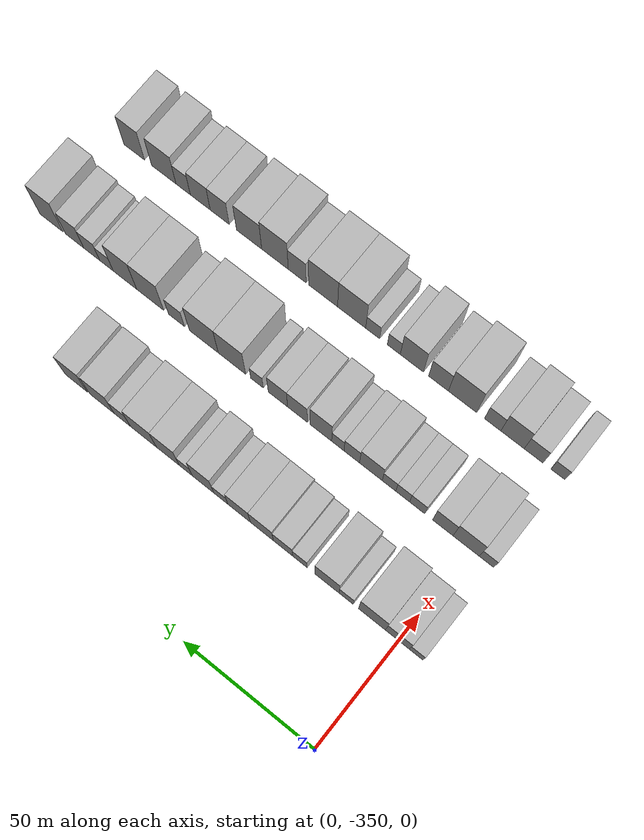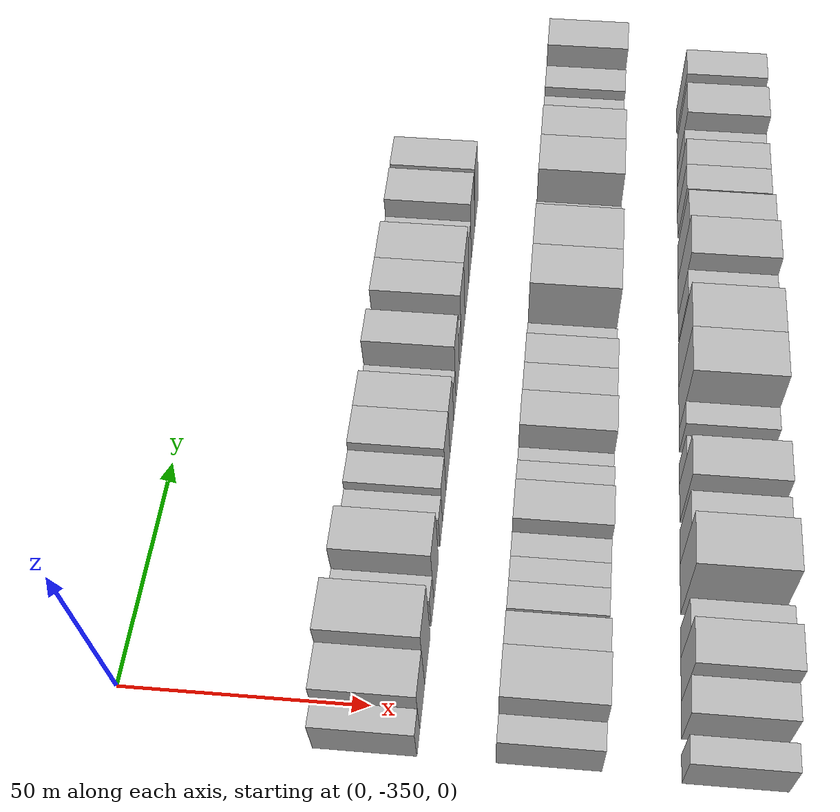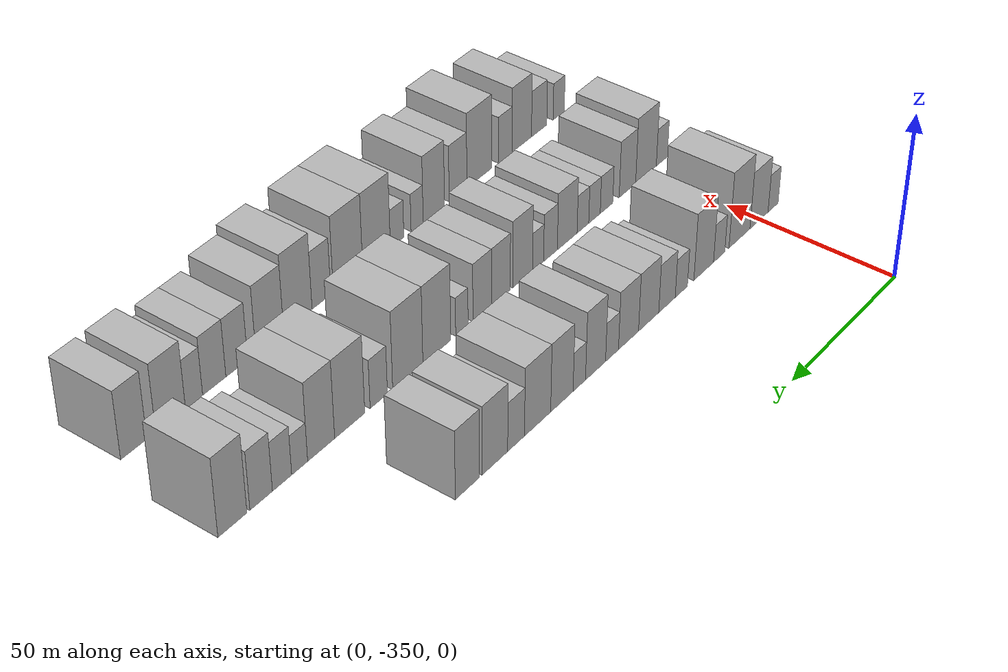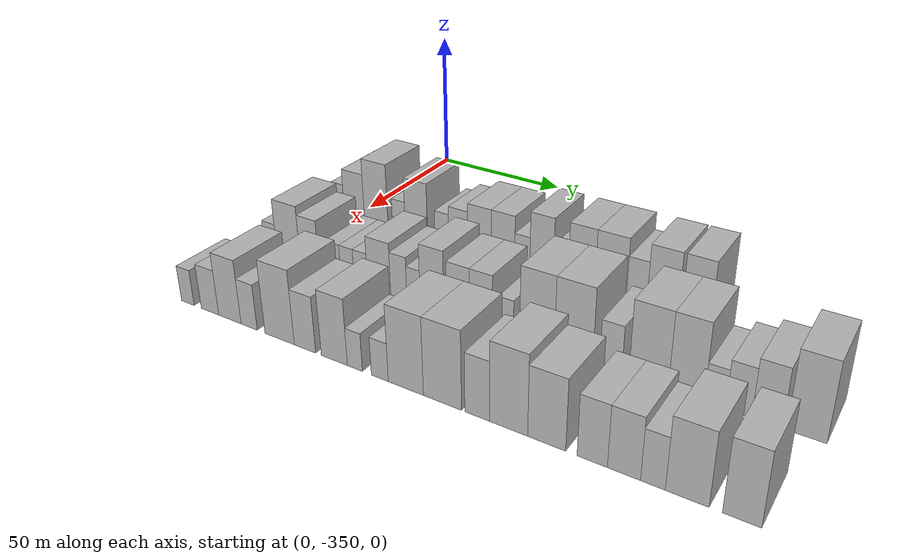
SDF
<sdf version="1.6">
 <world name="default">
  <model name="building_1">
   <static>1</static>
   <pose>50.0000 -356.4722 0 0.000000 0.000000 0.000000</pose>
   <link name="link">
    <pose>0 0 6.00 0 0 0</pose>
    <collision name="collision"><geometry><box><size>20.0000 5.0555 12.0000</size></box></geometry></collision>
    <visual name="visual">
     <cast_shadows>0</cast_shadows>
     <geometry><box><size>20.0000 5.0555 12.0000</size></box></geometry>
     <material>
      <script>
       <uri>model://HANNAS_wall/materials/scripts</uri>
       <uri>model://HANNAS_wall/materials/textures</uri>
       <name>vrc/HANNAS_wall</name>
      </script>
     </material>
    </visual>
   </link>
  </model>
  <model name="building_2">
   <static>1</static>
   <pose>50.0000 -349.4609 0 0.000000 0.000000 0.000000</pose>
   <link name="link">
    <pose>0 0 9.00 0 0 0</pose>
    <collision name="collision"><geometry><box><size>20.0000 8.9670 18.0000</size></box></geometry></collision>
    <visual name="visual">
     <cast_shadows>0</cast_shadows>
     <geometry><box><size>20.0000 8.9670 18.0000</size></box></geometry>
     <material>
      <script>
       <uri>model://HANNAS_wall/materials/scripts</uri>
       <uri>model://HANNAS_wall/materials/textures</uri>
       <name>vrc/HANNAS_wall</name>
      </script>
     </material>
    </visual>
   </link>
  </model>
  <model name="building_3">
   <static>1</static>
   <pose>50.0000 -339.8826 0 0.000000 0.000000 0.000000</pose>
   <link name="link">
    <pose>0 0 12.00 0 0 0</pose>
    <collision name="collision"><geometry><box><size>20.0000 10.1896 24.0000</size></box></geometry></collision>
    <visual name="visual">
     <cast_shadows>0</cast_shadows>
     <geometry><box><size>20.0000 10.1896 24.0000</size></box></geometry>
     <material>
      <script>
       <uri>model://HANNAS_wall/materials/scripts</uri>
       <uri>model://HANNAS_wall/materials/textures</uri>
       <name>vrc/HANNAS_wall</name>
      </script>
     </material>
    </visual>
   </link>
  </model>
  <model name="building_4">
   <static>1</static>
   <pose>50.0000 -330.0991 0 0.000000 0.000000 0.000000</pose>
   <link name="link">
    <pose>0 0 6.00 0 0 0</pose>
    <collision name="collision"><geometry><box><size>20.0000 5.3775 12.0000</size></box></geometry></collision>
    <visual name="visual">
     <cast_shadows>0</cast_shadows>
     <geometry><box><size>20.0000 5.3775 12.0000</size></box></geometry>
     <material>
      <script>
       <uri>model://HANNAS_wall/materials/scripts</uri>
       <uri>model://HANNAS_wall/materials/textures</uri>
       <name>vrc/HANNAS_wall</name>
      </script>
     </material>
    </visual>
   </link>
  </model>
  <model name="building_5">
   <static>1</static>
   <pose>50.0000 -322.8088 0 0.000000 0.000000 0.000000</pose>
   <link name="link">
    <pose>0 0 10.50 0 0 0</pose>
    <collision name="collision"><geometry><box><size>20.0000 9.2032 21.0000</size></box></geometry></collision>
    <visual name="visual">
     <cast_shadows>0</cast_shadows>
     <geometry><box><size>20.0000 9.2032 21.0000</size></box></geometry>
     <material>
      <script>
       <uri>model://HANNAS_wall/materials/scripts</uri>
       <uri>model://HANNAS_wall/materials/textures</uri>
       <name>vrc/HANNAS_wall</name>
      </script>
     </material>
    </visual>
   </link>
  </model>
  <model name="building_6">
   <static>1</static>
   <pose>50.0000 -312.4091 0 0.000000 0.000000 0.000000</pose>
   <link name="link">
    <pose>0 0 6.00 0 0 0</pose>
    <collision name="collision"><geometry><box><size>20.0000 5.5962 12.0000</size></box></geometry></collision>
    <visual name="visual">
     <cast_shadows>0</cast_shadows>
     <geometry><box><size>20.0000 5.5962 12.0000</size></box></geometry>
     <material>
      <script>
       <uri>model://HANNAS_wall/materials/scripts</uri>
       <uri>model://HANNAS_wall/materials/textures</uri>
       <name>vrc/HANNAS_wall</name>
      </script>
     </material>
    </visual>
   </link>
  </model>
  <model name="building_7">
   <static>1</static>
   <pose>50.0000 -305.8797 0 0.000000 0.000000 0.000000</pose>
   <link name="link">
    <pose>0 0 7.50 0 0 0</pose>
    <collision name="collision"><geometry><box><size>20.0000 7.4626 15.0000</size></box></geometry></collision>
    <visual name="visual">
     <cast_shadows>0</cast_shadows>
     <geometry><box><size>20.0000 7.4626 15.0000</size></box></geometry>
     <material>
      <script>
       <uri>model://HANNAS_wall/materials/scripts</uri>
       <uri>model://HANNAS_wall/materials/textures</uri>
       <name>vrc/HANNAS_wall</name>
      </script>
     </material>
    </visual>
   </link>
  </model>
  <model name="building_8">
   <static>1</static>
   <pose>50.0000 -297.6605 0 0.000000 0.000000 0.000000</pose>
   <link name="link">
    <pose>0 0 9.00 0 0 0</pose>
    <collision name="collision"><geometry><box><size>20.0000 8.9758 18.0000</size></box></geometry></collision>
    <visual name="visual">
     <cast_shadows>0</cast_shadows>
     <geometry><box><size>20.0000 8.9758 18.0000</size></box></geometry>
     <material>
      <script>
       <uri>model://HANNAS_wall/materials/scripts</uri>
       <uri>model://HANNAS_wall/materials/textures</uri>
       <name>vrc/HANNAS_wall</name>
      </script>
     </material>
    </visual>
   </link>
  </model>
  <model name="building_9">
   <static>1</static>
   <pose>50.0000 -288.8021 0 0.000000 0.000000 0.000000</pose>
   <link name="link">
    <pose>0 0 9.00 0 0 0</pose>
    <collision name="collision"><geometry><box><size>20.0000 8.7409 18.0000</size></box></geometry></collision>
    <visual name="visual">
     <cast_shadows>0</cast_shadows>
     <geometry><box><size>20.0000 8.7409 18.0000</size></box></geometry>
     <material>
      <script>
       <uri>model://HANNAS_wall/materials/scripts</uri>
       <uri>model://HANNAS_wall/materials/textures</uri>
       <name>vrc/HANNAS_wall</name>
      </script>
     </material>
    </visual>
   </link>
  </model>
  <model name="building_10">
   <static>1</static>
   <pose>50.0000 -281.6566 0 0.000000 0.000000 0.000000</pose>
   <link name="link">
    <pose>0 0 6.00 0 0 0</pose>
    <collision name="collision"><geometry><box><size>20.0000 5.5501 12.0000</size></box></geometry></collision>
    <visual name="visual">
     <cast_shadows>0</cast_shadows>
     <geometry><box><size>20.0000 5.5501 12.0000</size></box></geometry>
     <material>
      <script>
       <uri>model://HANNAS_wall/materials/scripts</uri>
       <uri>model://HANNAS_wall/materials/textures</uri>
       <name>vrc/HANNAS_wall</name>
      </script>
     </material>
    </visual>
   </link>
  </model>
  <model name="building_11">
   <static>1</static>
   <pose>50.0000 -274.6455 0 0.000000 0.000000 0.000000</pose>
   <link name="link">
    <pose>0 0 10.50 0 0 0</pose>
    <collision name="collision"><geometry><box><size>20.0000 8.4722 21.0000</size></box></geometry></collision>
    <visual name="visual">
     <cast_shadows>0</cast_shadows>
     <geometry><box><size>20.0000 8.4722 21.0000</size></box></geometry>
     <material>
      <script>
       <uri>model://HANNAS_wall/materials/scripts</uri>
       <uri>model://HANNAS_wall/materials/textures</uri>
       <name>vrc/HANNAS_wall</name>
      </script>
     </material>
    </visual>
   </link>
  </model>
  <model name="building_12">
   <static>1</static>
   <pose>50.0000 -267.8243 0 0.000000 0.000000 0.000000</pose>
   <link name="link">
    <pose>0 0 6.00 0 0 0</pose>
    <collision name="collision"><geometry><box><size>20.0000 5.1701 12.0000</size></box></geometry></collision>
    <visual name="visual">
     <cast_shadows>0</cast_shadows>
     <geometry><box><size>20.0000 5.1701 12.0000</size></box></geometry>
     <material>
      <script>
       <uri>model://HANNAS_wall/materials/scripts</uri>
       <uri>model://HANNAS_wall/materials/textures</uri>
       <name>vrc/HANNAS_wall</name>
      </script>
     </material>
    </visual>
   </link>
  </model>
  <model name="building_13">
   <static>1</static>
   <pose>50.0000 -260.6515 0 0.000000 0.000000 0.000000</pose>
   <link name="link">
    <pose>0 0 10.50 0 0 0</pose>
    <collision name="collision"><geometry><box><size>20.0000 9.1756 21.0000</size></box></geometry></collision>
    <visual name="visual">
     <cast_shadows>0</cast_shadows>
     <geometry><box><size>20.0000 9.1756 21.0000</size></box></geometry>
     <material>
      <script>
       <uri>model://HANNAS_wall/materials/scripts</uri>
       <uri>model://HANNAS_wall/materials/textures</uri>
       <name>vrc/HANNAS_wall</name>
      </script>
     </material>
    </visual>
   </link>
  </model>
  <model name="building_14">
   <static>1</static>
   <pose>50.0000 -250.8220 0 0.000000 0.000000 0.000000</pose>
   <link name="link">
    <pose>0 0 10.50 0 0 0</pose>
    <collision name="collision"><geometry><box><size>20.0000 10.4834 21.0000</size></box></geometry></collision>
    <visual name="visual">
     <cast_shadows>0</cast_shadows>
     <geometry><box><size>20.0000 10.4834 21.0000</size></box></geometry>
     <material>
      <script>
       <uri>model://HANNAS_wall/materials/scripts</uri>
       <uri>model://HANNAS_wall/materials/textures</uri>
       <name>vrc/HANNAS_wall</name>
      </script>
     </material>
    </visual>
   </link>
  </model>
  <model name="building_15">
   <static>1</static>
   <pose>50.0000 -242.2735 0 0.000000 0.000000 0.000000</pose>
   <link name="link">
    <pose>0 0 7.50 0 0 0</pose>
    <collision name="collision"><geometry><box><size>20.0000 6.6137 15.0000</size></box></geometry></collision>
    <visual name="visual">
     <cast_shadows>0</cast_shadows>
     <geometry><box><size>20.0000 6.6137 15.0000</size></box></geometry>
     <material>
      <script>
       <uri>model://HANNAS_wall/materials/scripts</uri>
       <uri>model://HANNAS_wall/materials/textures</uri>
       <name>vrc/HANNAS_wall</name>
      </script>
     </material>
    </visual>
   </link>
  </model>
  <model name="building_16">
   <static>1</static>
   <pose>50.0000 -234.0379 0 0.000000 0.000000 0.000000</pose>
   <link name="link">
    <pose>0 0 10.50 0 0 0</pose>
    <collision name="collision"><geometry><box><size>20.0000 9.8577 21.0000</size></box></geometry></collision>
    <visual name="visual">
     <cast_shadows>0</cast_shadows>
     <geometry><box><size>20.0000 9.8577 21.0000</size></box></geometry>
     <material>
      <script>
       <uri>model://HANNAS_wall/materials/scripts</uri>
       <uri>model://HANNAS_wall/materials/textures</uri>
       <name>vrc/HANNAS_wall</name>
      </script>
     </material>
    </visual>
   </link>
  </model>
  <model name="building_17">
   <static>1</static>
   <pose>50.0000 -223.5714 0 0.000000 0.000000 0.000000</pose>
   <link name="link">
    <pose>0 0 10.50 0 0 0</pose>
    <collision name="collision"><geometry><box><size>20.0000 9.0753 21.0000</size></box></geometry></collision>
    <visual name="visual">
     <cast_shadows>0</cast_shadows>
     <geometry><box><size>20.0000 9.0753 21.0000</size></box></geometry>
     <material>
      <script>
       <uri>model://HANNAS_wall/materials/scripts</uri>
       <uri>model://HANNAS_wall/materials/textures</uri>
       <name>vrc/HANNAS_wall</name>
      </script>
     </material>
    </visual>
   </link>
  </model>
  <model name="building_79">
   <static>1</static>
   <pose>85.0000 -356.3053 0 0.000000 0.000000 0.000000</pose>
   <link name="link">
    <pose>0 0 6.00 0 0 0</pose>
    <collision name="collision"><geometry><box><size>20.0000 5.3895 12.0000</size></box></geometry></collision>
    <visual name="visual">
     <cast_shadows>0</cast_shadows>
     <geometry><box><size>20.0000 5.3895 12.0000</size></box></geometry>
     <material>
      <script>
       <uri>model://HANNAS_wall/materials/scripts</uri>
       <uri>model://HANNAS_wall/materials/textures</uri>
       <name>vrc/HANNAS_wall</name>
      </script>
     </material>
    </visual>
   </link>
  </model>
  <model name="building_80">
   <static>1</static>
   <pose>85.0000 -348.6415 0 0.000000 0.000000 0.000000</pose>
   <link name="link">
    <pose>0 0 10.50 0 0 0</pose>
    <collision name="collision"><geometry><box><size>20.0000 9.9381 21.0000</size></box></geometry></collision>
    <visual name="visual">
     <cast_shadows>0</cast_shadows>
     <geometry><box><size>20.0000 9.9381 21.0000</size></box></geometry>
     <material>
      <script>
       <uri>model://HANNAS_wall/materials/scripts</uri>
       <uri>model://HANNAS_wall/materials/textures</uri>
       <name>vrc/HANNAS_wall</name>
      </script>
     </material>
    </visual>
   </link>
  </model>
  <model name="building_81">
   <static>1</static>
   <pose>85.0000 -339.7774 0 0.000000 0.000000 0.000000</pose>
   <link name="link">
    <pose>0 0 9.00 0 0 0</pose>
    <collision name="collision"><geometry><box><size>20.0000 7.7900 18.0000</size></box></geometry></collision>
    <visual name="visual">
     <cast_shadows>0</cast_shadows>
     <geometry><box><size>20.0000 7.7900 18.0000</size></box></geometry>
     <material>
      <script>
       <uri>model://HANNAS_wall/materials/scripts</uri>
       <uri>model://HANNAS_wall/materials/textures</uri>
       <name>vrc/HANNAS_wall</name>
      </script>
     </material>
    </visual>
   </link>
  </model>
  <model name="building_82">
   <static>1</static>
   <pose>85.0000 -329.9830 0 0.000000 0.000000 0.000000</pose>
   <link name="link">
    <pose>0 0 6.00 0 0 0</pose>
    <collision name="collision"><geometry><box><size>20.0000 5.7989 12.0000</size></box></geometry></collision>
    <visual name="visual">
     <cast_shadows>0</cast_shadows>
     <geometry><box><size>20.0000 5.7989 12.0000</size></box></geometry>
     <material>
      <script>
       <uri>model://HANNAS_wall/materials/scripts</uri>
       <uri>model://HANNAS_wall/materials/textures</uri>
       <name>vrc/HANNAS_wall</name>
      </script>
     </material>
    </visual>
   </link>
  </model>
  <model name="building_83">
   <static>1</static>
   <pose>85.0000 -324.4376 0 0.000000 0.000000 0.000000</pose>
   <link name="link">
    <pose>0 0 6.00 0 0 0</pose>
    <collision name="collision"><geometry><box><size>20.0000 5.2920 12.0000</size></box></geometry></collision>
    <visual name="visual">
     <cast_shadows>0</cast_shadows>
     <geometry><box><size>20.0000 5.2920 12.0000</size></box></geometry>
     <material>
      <script>
       <uri>model://HANNAS_wall/materials/scripts</uri>
       <uri>model://HANNAS_wall/materials/textures</uri>
       <name>vrc/HANNAS_wall</name>
      </script>
     </material>
    </visual>
   </link>
  </model>
  <model name="building_84">
   <static>1</static>
   <pose>85.0000 -319.1594 0 0.000000 0.000000 0.000000</pose>
   <link name="link">
    <pose>0 0 6.00 0 0 0</pose>
    <collision name="collision"><geometry><box><size>20.0000 5.2644 12.0000</size></box></geometry></collision>
    <visual name="visual">
     <cast_shadows>0</cast_shadows>
     <geometry><box><size>20.0000 5.2644 12.0000</size></box></geometry>
     <material>
      <script>
       <uri>model://HANNAS_wall/materials/scripts</uri>
       <uri>model://HANNAS_wall/materials/textures</uri>
       <name>vrc/HANNAS_wall</name>
      </script>
     </material>
    </visual>
   </link>
  </model>
  <model name="building_85">
   <static>1</static>
   <pose>85.0000 -312.1213 0 0.000000 0.000000 0.000000</pose>
   <link name="link">
    <pose>0 0 9.00 0 0 0</pose>
    <collision name="collision"><geometry><box><size>20.0000 8.8118 18.0000</size></box></geometry></collision>
    <visual name="visual">
     <cast_shadows>0</cast_shadows>
     <geometry><box><size>20.0000 8.8118 18.0000</size></box></geometry>
     <material>
      <script>
       <uri>model://HANNAS_wall/materials/scripts</uri>
       <uri>model://HANNAS_wall/materials/textures</uri>
       <name>vrc/HANNAS_wall</name>
      </script>
     </material>
    </visual>
   </link>
  </model>
  <model name="building_86">
   <static>1</static>
   <pose>85.0000 -304.6947 0 0.000000 0.000000 0.000000</pose>
   <link name="link">
    <pose>0 0 7.50 0 0 0</pose>
    <collision name="collision"><geometry><box><size>20.0000 6.0415 15.0000</size></box></geometry></collision>
    <visual name="visual">
     <cast_shadows>0</cast_shadows>
     <geometry><box><size>20.0000 6.0415 15.0000</size></box></geometry>
     <material>
      <script>
       <uri>model://HANNAS_wall/materials/scripts</uri>
       <uri>model://HANNAS_wall/materials/textures</uri>
       <name>vrc/HANNAS_wall</name>
      </script>
     </material>
    </visual>
   </link>
  </model>
  <model name="building_87">
   <static>1</static>
   <pose>85.0000 -299.2557 0 0.000000 0.000000 0.000000</pose>
   <link name="link">
    <pose>0 0 6.00 0 0 0</pose>
    <collision name="collision"><geometry><box><size>20.0000 4.8366 12.0000</size></box></geometry></collision>
    <visual name="visual">
     <cast_shadows>0</cast_shadows>
     <geometry><box><size>20.0000 4.8366 12.0000</size></box></geometry>
     <material>
      <script>
       <uri>model://HANNAS_wall/materials/scripts</uri>
       <uri>model://HANNAS_wall/materials/textures</uri>
       <name>vrc/HANNAS_wall</name>
      </script>
     </material>
    </visual>
   </link>
  </model>
  <model name="building_88">
   <static>1</static>
   <pose>85.0000 -292.5756 0 0.000000 0.000000 0.000000</pose>
   <link name="link">
    <pose>0 0 10.50 0 0 0</pose>
    <collision name="collision"><geometry><box><size>20.0000 8.5235 21.0000</size></box></geometry></collision>
    <visual name="visual">
     <cast_shadows>0</cast_shadows>
     <geometry><box><size>20.0000 8.5235 21.0000</size></box></geometry>
     <material>
      <script>
       <uri>model://HANNAS_wall/materials/scripts</uri>
       <uri>model://HANNAS_wall/materials/textures</uri>
       <name>vrc/HANNAS_wall</name>
      </script>
     </material>
    </visual>
   </link>
  </model>
  <model name="building_89">
   <static>1</static>
   <pose>85.0000 -283.3786 0 0.000000 0.000000 0.000000</pose>
   <link name="link">
    <pose>0 0 9.00 0 0 0</pose>
    <collision name="collision"><geometry><box><size>20.0000 7.8707 18.0000</size></box></geometry></collision>
    <visual name="visual">
     <cast_shadows>0</cast_shadows>
     <geometry><box><size>20.0000 7.8707 18.0000</size></box></geometry>
     <material>
      <script>
       <uri>model://HANNAS_wall/materials/scripts</uri>
       <uri>model://HANNAS_wall/materials/textures</uri>
       <name>vrc/HANNAS_wall</name>
      </script>
     </material>
    </visual>
   </link>
  </model>
  <model name="building_90">
   <static>1</static>
   <pose>85.0000 -275.6140 0 0.000000 0.000000 0.000000</pose>
   <link name="link">
    <pose>0 0 9.00 0 0 0</pose>
    <collision name="collision"><geometry><box><size>20.0000 7.6584 18.0000</size></box></geometry></collision>
    <visual name="visual">
     <cast_shadows>0</cast_shadows>
     <geometry><box><size>20.0000 7.6584 18.0000</size></box></geometry>
     <material>
      <script>
       <uri>model://HANNAS_wall/materials/scripts</uri>
       <uri>model://HANNAS_wall/materials/textures</uri>
       <name>vrc/HANNAS_wall</name>
      </script>
     </material>
    </visual>
   </link>
  </model>
  <model name="building_91">
   <static>1</static>
   <pose>85.0000 -267.2716 0 0.000000 0.000000 0.000000</pose>
   <link name="link">
    <pose>0 0 6.00 0 0 0</pose>
    <collision name="collision"><geometry><box><size>20.0000 5.0264 12.0000</size></box></geometry></collision>
    <visual name="visual">
     <cast_shadows>0</cast_shadows>
     <geometry><box><size>20.0000 5.0264 12.0000</size></box></geometry>
     <material>
      <script>
       <uri>model://HANNAS_wall/materials/scripts</uri>
       <uri>model://HANNAS_wall/materials/textures</uri>
       <name>vrc/HANNAS_wall</name>
      </script>
     </material>
    </visual>
   </link>
  </model>
  <model name="building_92">
   <static>1</static>
   <pose>85.0000 -257.2351 0 0.000000 0.000000 0.000000</pose>
   <link name="link">
    <pose>0 0 12.00 0 0 0</pose>
    <collision name="collision"><geometry><box><size>20.0000 11.0465 24.0000</size></box></geometry></collision>
    <visual name="visual">
     <cast_shadows>0</cast_shadows>
     <geometry><box><size>20.0000 11.0465 24.0000</size></box></geometry>
     <material>
      <script>
       <uri>model://HANNAS_wall/materials/scripts</uri>
       <uri>model://HANNAS_wall/materials/textures</uri>
       <name>vrc/HANNAS_wall</name>
      </script>
     </material>
    </visual>
   </link>
  </model>
  <model name="building_93">
   <static>1</static>
   <pose>85.0000 -245.8570 0 0.000000 0.000000 0.000000</pose>
   <link name="link">
    <pose>0 0 12.00 0 0 0</pose>
    <collision name="collision"><geometry><box><size>20.0000 11.7097 24.0000</size></box></geometry></collision>
    <visual name="visual">
     <cast_shadows>0</cast_shadows>
     <geometry><box><size>20.0000 11.7097 24.0000</size></box></geometry>
     <material>
      <script>
       <uri>model://HANNAS_wall/materials/scripts</uri>
       <uri>model://HANNAS_wall/materials/textures</uri>
       <name>vrc/HANNAS_wall</name>
      </script>
     </material>
    </visual>
   </link>
  </model>
  <model name="building_94">
   <static>1</static>
   <pose>85.0000 -234.7303 0 0.000000 0.000000 0.000000</pose>
   <link name="link">
    <pose>0 0 7.50 0 0 0</pose>
    <collision name="collision"><geometry><box><size>20.0000 6.5437 15.0000</size></box></geometry></collision>
    <visual name="visual">
     <cast_shadows>0</cast_shadows>
     <geometry><box><size>20.0000 6.5437 15.0000</size></box></geometry>
     <material>
      <script>
       <uri>model://HANNAS_wall/materials/scripts</uri>
       <uri>model://HANNAS_wall/materials/textures</uri>
       <name>vrc/HANNAS_wall</name>
      </script>
     </material>
    </visual>
   </link>
  </model>
  <model name="building_95">
   <static>1</static>
   <pose>85.0000 -223.9074 0 0.000000 0.000000 0.000000</pose>
   <link name="link">
    <pose>0 0 12.00 0 0 0</pose>
    <collision name="collision"><geometry><box><size>20.0000 11.1022 24.0000</size></box></geometry></collision>
    <visual name="visual">
     <cast_shadows>0</cast_shadows>
     <geometry><box><size>20.0000 11.1022 24.0000</size></box></geometry>
     <material>
      <script>
       <uri>model://HANNAS_wall/materials/scripts</uri>
       <uri>model://HANNAS_wall/materials/textures</uri>
       <name>vrc/HANNAS_wall</name>
      </script>
     </material>
    </visual>
   </link>
  </model>
  <model name="building_96">
   <static>1</static>
   <pose>85.0000 -213.4973 0 0.000000 0.000000 0.000000</pose>
   <link name="link">
    <pose>0 0 12.00 0 0 0</pose>
    <collision name="collision"><geometry><box><size>20.0000 9.7180 24.0000</size></box></geometry></collision>
    <visual name="visual">
     <cast_shadows>0</cast_shadows>
     <geometry><box><size>20.0000 9.7180 24.0000</size></box></geometry>
     <material>
      <script>
       <uri>model://HANNAS_wall/materials/scripts</uri>
       <uri>model://HANNAS_wall/materials/textures</uri>
       <name>vrc/HANNAS_wall</name>
      </script>
     </material>
    </visual>
   </link>
  </model>
  <model name="building_97">
   <static>1</static>
   <pose>85.0000 -205.8139 0 0.000000 0.000000 0.000000</pose>
   <link name="link">
    <pose>0 0 6.00 0 0 0</pose>
    <collision name="collision"><geometry><box><size>20.0000 5.6487 12.0000</size></box></geometry></collision>
    <visual name="visual">
     <cast_shadows>0</cast_shadows>
     <geometry><box><size>20.0000 5.6487 12.0000</size></box></geometry>
     <material>
      <script>
       <uri>model://HANNAS_wall/materials/scripts</uri>
       <uri>model://HANNAS_wall/materials/textures</uri>
       <name>vrc/HANNAS_wall</name>
      </script>
     </material>
    </visual>
   </link>
  </model>
  <model name="building_98">
   <static>1</static>
   <pose>85.0000 -199.6351 0 0.000000 0.000000 0.000000</pose>
   <link name="link">
    <pose>0 0 7.50 0 0 0</pose>
    <collision name="collision"><geometry><box><size>20.0000 6.7090 15.0000</size></box></geometry></collision>
    <visual name="visual">
     <cast_shadows>0</cast_shadows>
     <geometry><box><size>20.0000 6.7090 15.0000</size></box></geometry>
     <material>
      <script>
       <uri>model://HANNAS_wall/materials/scripts</uri>
       <uri>model://HANNAS_wall/materials/textures</uri>
       <name>vrc/HANNAS_wall</name>
      </script>
     </material>
    </visual>
   </link>
  </model>
  <model name="building_99">
   <static>1</static>
   <pose>85.0000 -192.4190 0 0.000000 0.000000 0.000000</pose>
   <link name="link">
    <pose>0 0 9.00 0 0 0</pose>
    <collision name="collision"><geometry><box><size>20.0000 7.7231 18.0000</size></box></geometry></collision>
    <visual name="visual">
     <cast_shadows>0</cast_shadows>
     <geometry><box><size>20.0000 7.7231 18.0000</size></box></geometry>
     <material>
      <script>
       <uri>model://HANNAS_wall/materials/scripts</uri>
       <uri>model://HANNAS_wall/materials/textures</uri>
       <name>vrc/HANNAS_wall</name>
      </script>
     </material>
    </visual>
   </link>
  </model>
  <model name="building_100">
   <static>1</static>
   <pose>85.0000 -182.6920 0 0.000000 0.000000 0.000000</pose>
   <link name="link">
    <pose>0 0 12.00 0 0 0</pose>
    <collision name="collision"><geometry><box><size>20.0000 9.7309 24.0000</size></box></geometry></collision>
    <visual name="visual">
     <cast_shadows>0</cast_shadows>
     <geometry><box><size>20.0000 9.7309 24.0000</size></box></geometry>
     <material>
      <script>
       <uri>model://HANNAS_wall/materials/scripts</uri>
       <uri>model://HANNAS_wall/materials/textures</uri>
       <name>vrc/HANNAS_wall</name>
      </script>
     </material>
    </visual>
   </link>
  </model>
  <model name="building_154">
   <static>1</static>
   <pose>120.0000 -357.3282 0 0.000000 0.000000 0.000000</pose>
   <link name="link">
    <pose>0 0 6.00 0 0 0</pose>
    <collision name="collision"><geometry><box><size>20.0000 5.3436 12.0000</size></box></geometry></collision>
    <visual name="visual">
     <cast_shadows>0</cast_shadows>
     <geometry><box><size>20.0000 5.3436 12.0000</size></box></geometry>
     <material>
      <script>
       <uri>model://HANNAS_wall/materials/scripts</uri>
       <uri>model://HANNAS_wall/materials/textures</uri>
       <name>vrc/HANNAS_wall</name>
      </script>
     </material>
    </visual>
   </link>
  </model>
  <model name="building_155">
   <static>1</static>
   <pose>120.0000 -348.0711 0 0.000000 0.000000 0.000000</pose>
   <link name="link">
    <pose>0 0 7.50 0 0 0</pose>
    <collision name="collision"><geometry><box><size>20.0000 7.1707 15.0000</size></box></geometry></collision>
    <visual name="visual">
     <cast_shadows>0</cast_shadows>
     <geometry><box><size>20.0000 7.1707 15.0000</size></box></geometry>
     <material>
      <script>
       <uri>model://HANNAS_wall/materials/scripts</uri>
       <uri>model://HANNAS_wall/materials/textures</uri>
       <name>vrc/HANNAS_wall</name>
      </script>
     </material>
    </visual>
   </link>
  </model>
  <model name="building_156">
   <static>1</static>
   <pose>120.0000 -340.0100 0 0.000000 0.000000 0.000000</pose>
   <link name="link">
    <pose>0 0 10.50 0 0 0</pose>
    <collision name="collision"><geometry><box><size>20.0000 8.9516 21.0000</size></box></geometry></collision>
    <visual name="visual">
     <cast_shadows>0</cast_shadows>
     <geometry><box><size>20.0000 8.9516 21.0000</size></box></geometry>
     <material>
      <script>
       <uri>model://HANNAS_wall/materials/scripts</uri>
       <uri>model://HANNAS_wall/materials/textures</uri>
       <name>vrc/HANNAS_wall</name>
      </script>
     </material>
    </visual>
   </link>
  </model>
  <model name="building_157">
   <static>1</static>
   <pose>120.0000 -332.3901 0 0.000000 0.000000 0.000000</pose>
   <link name="link">
    <pose>0 0 7.50 0 0 0</pose>
    <collision name="collision"><geometry><box><size>20.0000 6.2882 15.0000</size></box></geometry></collision>
    <visual name="visual">
     <cast_shadows>0</cast_shadows>
     <geometry><box><size>20.0000 6.2882 15.0000</size></box></geometry>
     <material>
      <script>
       <uri>model://HANNAS_wall/materials/scripts</uri>
       <uri>model://HANNAS_wall/materials/textures</uri>
       <name>vrc/HANNAS_wall</name>
      </script>
     </material>
    </visual>
   </link>
  </model>
  <model name="building_158">
   <static>1</static>
   <pose>120.0000 -320.7487 0 0.000000 0.000000 0.000000</pose>
   <link name="link">
    <pose>0 0 12.00 0 0 0</pose>
    <collision name="collision"><geometry><box><size>20.0000 10.9946 24.0000</size></box></geometry></collision>
    <visual name="visual">
     <cast_shadows>0</cast_shadows>
     <geometry><box><size>20.0000 10.9946 24.0000</size></box></geometry>
     <material>
      <script>
       <uri>model://HANNAS_wall/materials/scripts</uri>
       <uri>model://HANNAS_wall/materials/textures</uri>
       <name>vrc/HANNAS_wall</name>
      </script>
     </material>
    </visual>
   </link>
  </model>
  <model name="building_159">
   <static>1</static>
   <pose>120.0000 -311.3797 0 0.000000 0.000000 0.000000</pose>
   <link name="link">
    <pose>0 0 9.00 0 0 0</pose>
    <collision name="collision"><geometry><box><size>20.0000 7.7434 18.0000</size></box></geometry></collision>
    <visual name="visual">
     <cast_shadows>0</cast_shadows>
     <geometry><box><size>20.0000 7.7434 18.0000</size></box></geometry>
     <material>
      <script>
       <uri>model://HANNAS_wall/materials/scripts</uri>
       <uri>model://HANNAS_wall/materials/textures</uri>
       <name>vrc/HANNAS_wall</name>
      </script>
     </material>
    </visual>
   </link>
  </model>
  <model name="building_160">
   <static>1</static>
   <pose>120.0000 -300.9549 0 0.000000 0.000000 0.000000</pose>
   <link name="link">
    <pose>0 0 10.50 0 0 0</pose>
    <collision name="collision"><geometry><box><size>20.0000 9.1062 21.0000</size></box></geometry></collision>
    <visual name="visual">
     <cast_shadows>0</cast_shadows>
     <geometry><box><size>20.0000 9.1062 21.0000</size></box></geometry>
     <material>
      <script>
       <uri>model://HANNAS_wall/materials/scripts</uri>
       <uri>model://HANNAS_wall/materials/textures</uri>
       <name>vrc/HANNAS_wall</name>
      </script>
     </material>
    </visual>
   </link>
  </model>
  <model name="building_161">
   <static>1</static>
   <pose>120.0000 -293.8381 0 0.000000 0.000000 0.000000</pose>
   <link name="link">
    <pose>0 0 6.00 0 0 0</pose>
    <collision name="collision"><geometry><box><size>20.0000 5.1274 12.0000</size></box></geometry></collision>
    <visual name="visual">
     <cast_shadows>0</cast_shadows>
     <geometry><box><size>20.0000 5.1274 12.0000</size></box></geometry>
     <material>
      <script>
       <uri>model://HANNAS_wall/materials/scripts</uri>
       <uri>model://HANNAS_wall/materials/textures</uri>
       <name>vrc/HANNAS_wall</name>
      </script>
     </material>
    </visual>
   </link>
  </model>
  <model name="building_162">
   <static>1</static>
   <pose>120.0000 -285.4860 0 0.000000 0.000000 0.000000</pose>
   <link name="link">
    <pose>0 0 6.00 0 0 0</pose>
    <collision name="collision"><geometry><box><size>20.0000 5.5769 12.0000</size></box></geometry></collision>
    <visual name="visual">
     <cast_shadows>0</cast_shadows>
     <geometry><box><size>20.0000 5.5769 12.0000</size></box></geometry>
     <material>
      <script>
       <uri>model://HANNAS_wall/materials/scripts</uri>
       <uri>model://HANNAS_wall/materials/textures</uri>
       <name>vrc/HANNAS_wall</name>
      </script>
     </material>
    </visual>
   </link>
  </model>
  <model name="building_163">
   <static>1</static>
   <pose>120.0000 -277.0735 0 0.000000 0.000000 0.000000</pose>
   <link name="link">
    <pose>0 0 12.00 0 0 0</pose>
    <collision name="collision"><geometry><box><size>20.0000 11.2482 24.0000</size></box></geometry></collision>
    <visual name="visual">
     <cast_shadows>0</cast_shadows>
     <geometry><box><size>20.0000 11.2482 24.0000</size></box></geometry>
     <material>
      <script>
       <uri>model://HANNAS_wall/materials/scripts</uri>
       <uri>model://HANNAS_wall/materials/textures</uri>
       <name>vrc/HANNAS_wall</name>
      </script>
     </material>
    </visual>
   </link>
  </model>
  <model name="building_164">
   <static>1</static>
   <pose>120.0000 -265.6166 0 0.000000 0.000000 0.000000</pose>
   <link name="link">
    <pose>0 0 12.00 0 0 0</pose>
    <collision name="collision"><geometry><box><size>20.0000 11.6656 24.0000</size></box></geometry></collision>
    <visual name="visual">
     <cast_shadows>0</cast_shadows>
     <geometry><box><size>20.0000 11.6656 24.0000</size></box></geometry>
     <material>
      <script>
       <uri>model://HANNAS_wall/materials/scripts</uri>
       <uri>model://HANNAS_wall/materials/textures</uri>
       <name>vrc/HANNAS_wall</name>
      </script>
     </material>
    </visual>
   </link>
  </model>
  <model name="building_165">
   <static>1</static>
   <pose>120.0000 -255.1508 0 0.000000 0.000000 0.000000</pose>
   <link name="link">
    <pose>0 0 9.00 0 0 0</pose>
    <collision name="collision"><geometry><box><size>20.0000 7.2659 18.0000</size></box></geometry></collision>
    <visual name="visual">
     <cast_shadows>0</cast_shadows>
     <geometry><box><size>20.0000 7.2659 18.0000</size></box></geometry>
     <material>
      <script>
       <uri>model://HANNAS_wall/materials/scripts</uri>
       <uri>model://HANNAS_wall/materials/textures</uri>
       <name>vrc/HANNAS_wall</name>
      </script>
     </material>
    </visual>
   </link>
  </model>
  <model name="building_166">
   <static>1</static>
   <pose>120.0000 -246.1067 0 0.000000 0.000000 0.000000</pose>
   <link name="link">
    <pose>0 0 12.00 0 0 0</pose>
    <collision name="collision"><geometry><box><size>20.0000 10.8224 24.0000</size></box></geometry></collision>
    <visual name="visual">
     <cast_shadows>0</cast_shadows>
     <geometry><box><size>20.0000 10.8224 24.0000</size></box></geometry>
     <material>
      <script>
       <uri>model://HANNAS_wall/materials/scripts</uri>
       <uri>model://HANNAS_wall/materials/textures</uri>
       <name>vrc/HANNAS_wall</name>
      </script>
     </material>
    </visual>
   </link>
  </model>
  <model name="building_167">
   <static>1</static>
   <pose>120.0000 -235.5131 0 0.000000 0.000000 0.000000</pose>
   <link name="link">
    <pose>0 0 10.50 0 0 0</pose>
    <collision name="collision"><geometry><box><size>20.0000 10.3647 21.0000</size></box></geometry></collision>
    <visual name="visual">
     <cast_shadows>0</cast_shadows>
     <geometry><box><size>20.0000 10.3647 21.0000</size></box></geometry>
     <material>
      <script>
       <uri>model://HANNAS_wall/materials/scripts</uri>
       <uri>model://HANNAS_wall/materials/textures</uri>
       <name>vrc/HANNAS_wall</name>
      </script>
     </material>
    </visual>
   </link>
  </model>
  <model name="building_168">
   <static>1</static>
   <pose>120.0000 -223.4073 0 0.000000 0.000000 0.000000</pose>
   <link name="link">
    <pose>0 0 9.00 0 0 0</pose>
    <collision name="collision"><geometry><box><size>20.0000 7.8469 18.0000</size></box></geometry></collision>
    <visual name="visual">
     <cast_shadows>0</cast_shadows>
     <geometry><box><size>20.0000 7.8469 18.0000</size></box></geometry>
     <material>
      <script>
       <uri>model://HANNAS_wall/materials/scripts</uri>
       <uri>model://HANNAS_wall/materials/textures</uri>
       <name>vrc/HANNAS_wall</name>
      </script>
     </material>
    </visual>
   </link>
  </model>
  <model name="building_169">
   <static>1</static>
   <pose>120.0000 -215.3442 0 0.000000 0.000000 0.000000</pose>
   <link name="link">
    <pose>0 0 9.00 0 0 0</pose>
    <collision name="collision"><geometry><box><size>20.0000 8.2793 18.0000</size></box></geometry></collision>
    <visual name="visual">
     <cast_shadows>0</cast_shadows>
     <geometry><box><size>20.0000 8.2793 18.0000</size></box></geometry>
     <material>
      <script>
       <uri>model://HANNAS_wall/materials/scripts</uri>
       <uri>model://HANNAS_wall/materials/textures</uri>
       <name>vrc/HANNAS_wall</name>
      </script>
     </material>
    </visual>
   </link>
  </model>
  <model name="building_170">
   <static>1</static>
   <pose>120.0000 -208.2001 0 0.000000 0.000000 0.000000</pose>
   <link name="link">
    <pose>0 0 7.50 0 0 0</pose>
    <collision name="collision"><geometry><box><size>20.0000 6.0088 15.0000</size></box></geometry></collision>
    <visual name="visual">
     <cast_shadows>0</cast_shadows>
     <geometry><box><size>20.0000 6.0088 15.0000</size></box></geometry>
     <material>
      <script>
       <uri>model://HANNAS_wall/materials/scripts</uri>
       <uri>model://HANNAS_wall/materials/textures</uri>
       <name>vrc/HANNAS_wall</name>
      </script>
     </material>
    </visual>
   </link>
  </model>
  <model name="building_171">
   <static>1</static>
   <pose>120.0000 -200.0648 0 0.000000 0.000000 0.000000</pose>
   <link name="link">
    <pose>0 0 10.50 0 0 0</pose>
    <collision name="collision"><geometry><box><size>20.0000 10.2617 21.0000</size></box></geometry></collision>
    <visual name="visual">
     <cast_shadows>0</cast_shadows>
     <geometry><box><size>20.0000 10.2617 21.0000</size></box></geometry>
     <material>
      <script>
       <uri>model://HANNAS_wall/materials/scripts</uri>
       <uri>model://HANNAS_wall/materials/textures</uri>
       <name>vrc/HANNAS_wall</name>
      </script>
     </material>
    </visual>
   </link>
  </model>
  <model name="building_172">
   <static>1</static>
   <pose>120.0000 -187.5641 0 0.000000 0.000000 0.000000</pose>
   <link name="link">
    <pose>0 0 10.50 0 0 0</pose>
    <collision name="collision"><geometry><box><size>20.0000 8.7396 21.0000</size></box></geometry></collision>
    <visual name="visual">
     <cast_shadows>0</cast_shadows>
     <geometry><box><size>20.0000 8.7396 21.0000</size></box></geometry>
     <material>
      <script>
       <uri>model://HANNAS_wall/materials/scripts</uri>
       <uri>model://HANNAS_wall/materials/textures</uri>
       <name>vrc/HANNAS_wall</name>
      </script>
     </material>
    </visual>
   </link>
  </model>
 </world>
</sdf>
